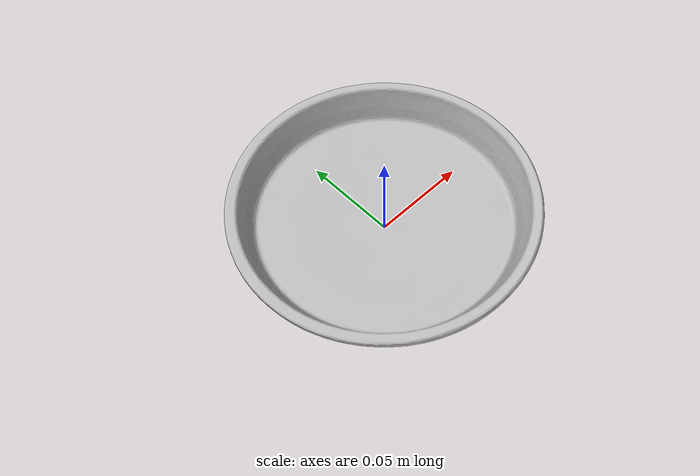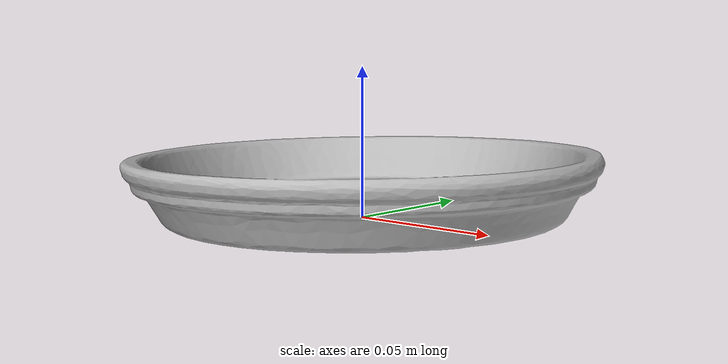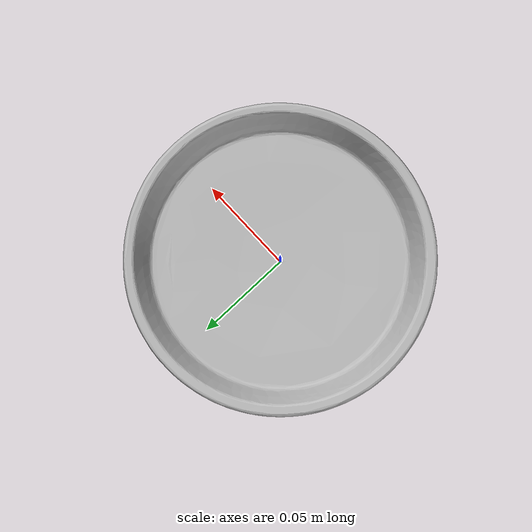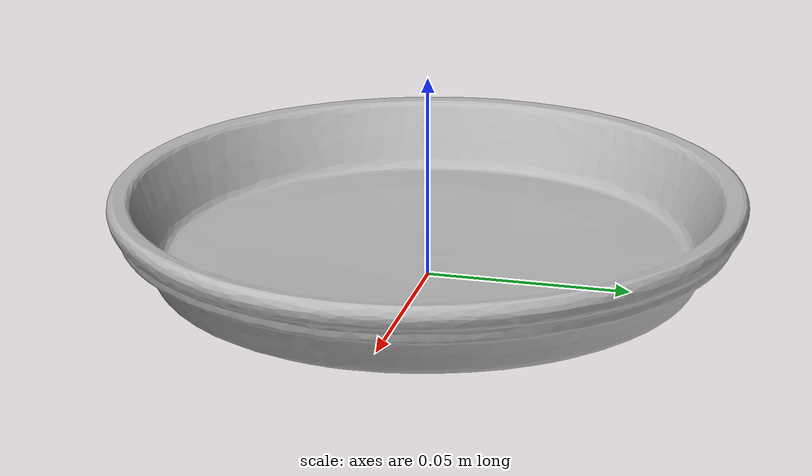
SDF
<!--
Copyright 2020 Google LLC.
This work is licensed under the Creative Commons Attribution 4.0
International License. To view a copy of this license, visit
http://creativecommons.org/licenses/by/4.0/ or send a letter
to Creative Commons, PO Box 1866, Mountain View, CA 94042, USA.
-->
<?xml version="1.0" ?>
<sdf version="1.6">
  <model name="Cole_Hardware_Plant_Saucer_Brown_125">
    <link name="link_0">
      <visual name="visual">
        <geometry>
          <mesh>
            <uri>model://Cole_Hardware_Plant_Saucer_Brown_125/meshes/model.obj</uri>
            <scale>0.5 0.5 0.5</scale>
          </mesh>
        </geometry>
      </visual>
      <collision name="collision_0">
        <geometry>
          <mesh>
            <uri>model://Cole_Hardware_Plant_Saucer_Brown_125/meshes/model.obj</uri>
            <scale>0.5 0.5 0.5</scale>
          </mesh>
        </geometry>
      </collision>
    </link>
  </model>
</sdf>
